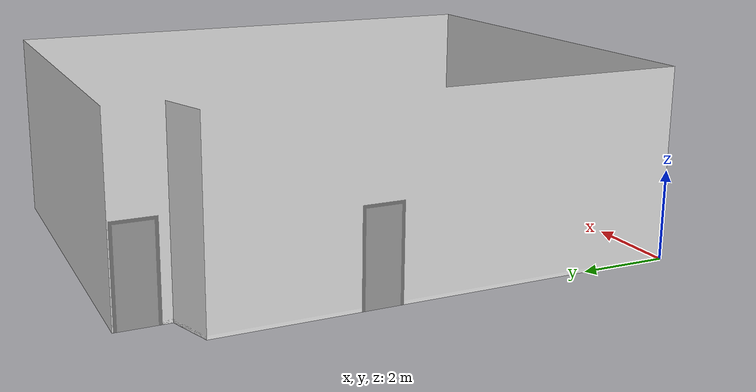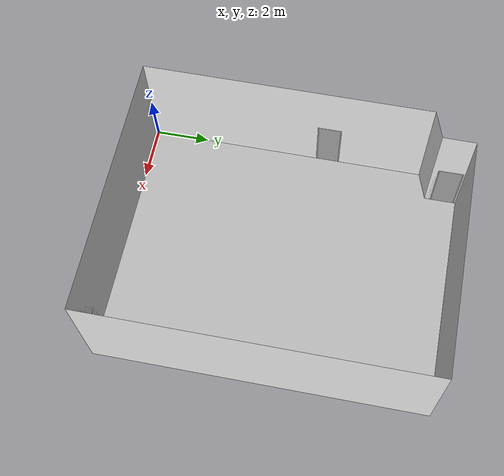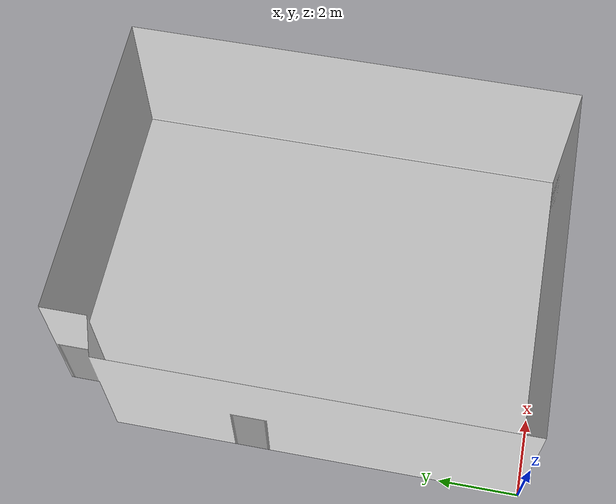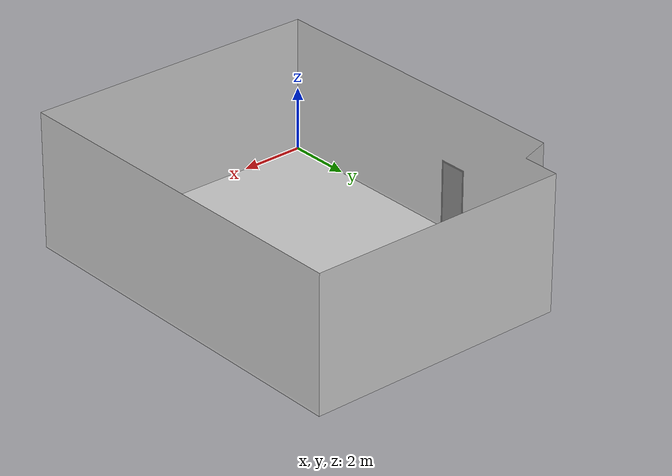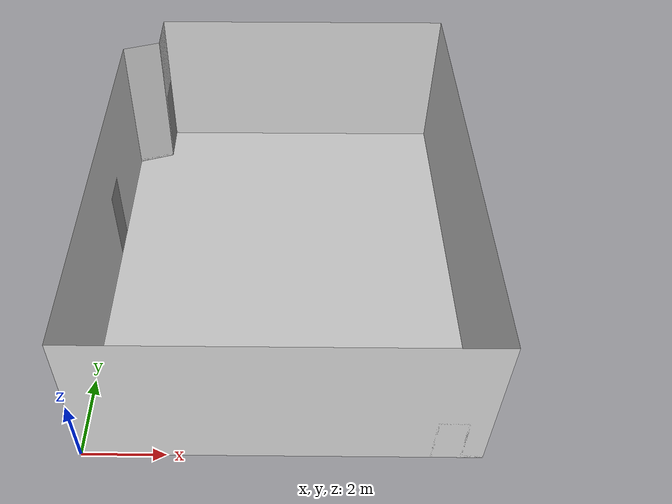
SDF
<?xml version="1.0"?>
<sdf version="1.3">
  <model name="HOC LG02">
    <static>true</static>
    <link name="link">
      <collision name="collision">
        <geometry>
          <mesh>
            <uri>model://lg02/meshes/lg02.dae</uri>
          </mesh>
        </geometry>
      </collision>
      <visual name="visual">
        <geometry>
          <mesh>
            <uri>model://lg02/meshes/lg02.dae</uri>
          </mesh>
        </geometry>
      </visual>
    </link>
  </model>
</sdf>
